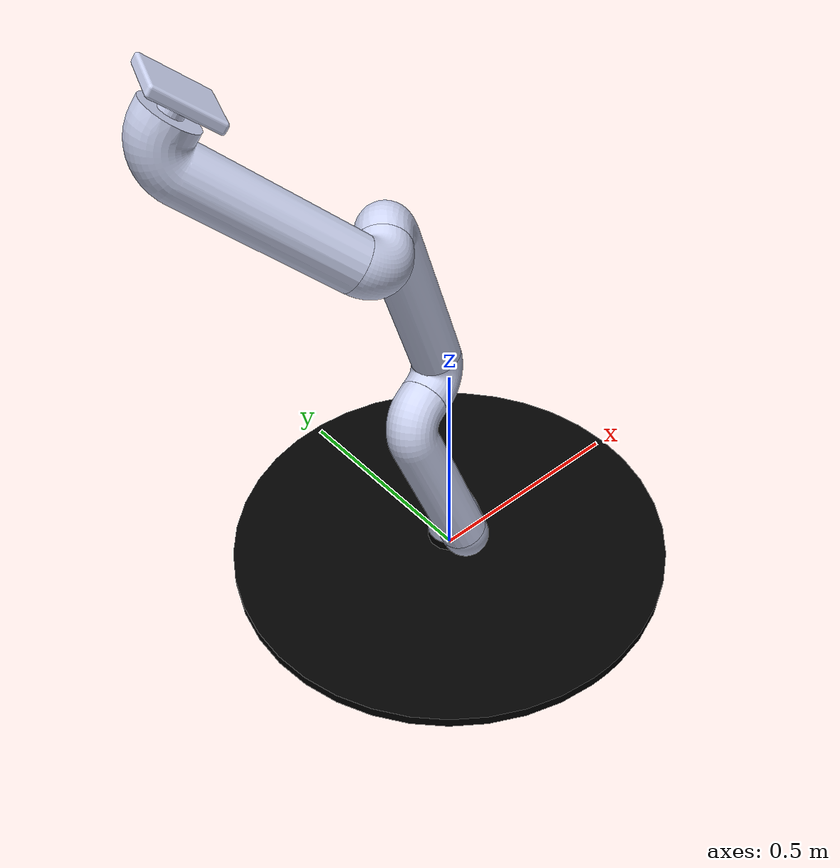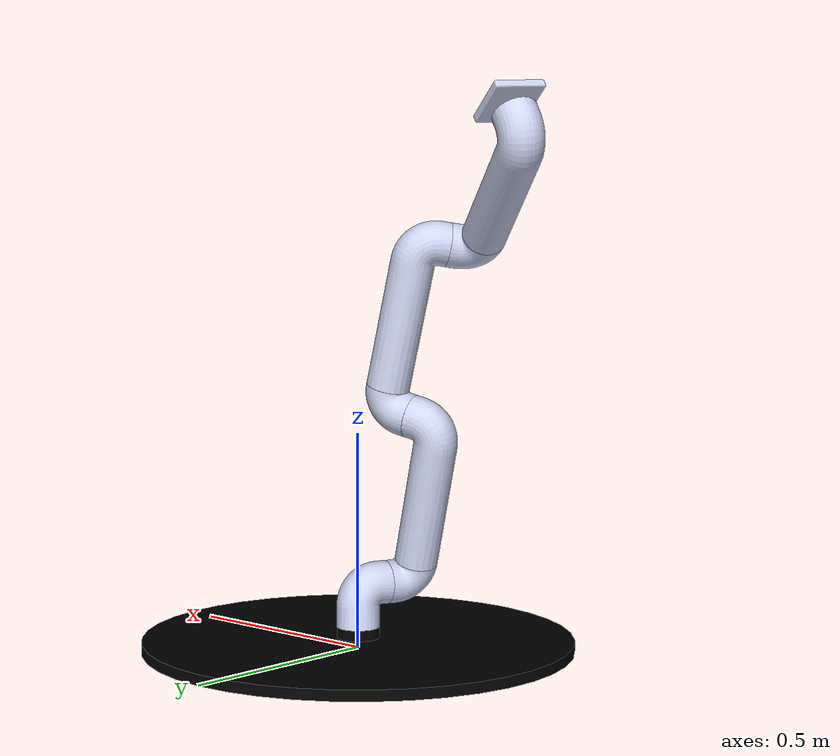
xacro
<?xml version="1.0"?>
<robot xmlns:xacro="http://wiki.ros.org/xacro"  name="sp_1">

<xacro:macro name="link_color">
  <visual>
    <material>
      <ambient>0.501960784313725 1 0.501960784313725 1</ambient>
      <diffuse>0.501960784313725 1 0.501960784313725 1</diffuse>
      <specular>0.1 0.1 0.1 1</specular>
      <emissive>0 0 0 0</emissive>
    </material>
  </visual>
</xacro:macro>

<xacro:macro name="base_color">
  <visual>
    <material>
      <ambient>0 0 0 1</ambient>
      <diffuse>0 0 0 1</diffuse>
      <specular>0.1 0.1 0.1 1</specular>
      <emissive>0 0 0 0</emissive>
    </material>
  </visual>
</xacro:macro>

<xacro:macro name="link2_color">
  <visual>
    <material>
      <ambient>0.250980392156863 0.250980392156863 0.250980392156863 1</ambient>
      <diffuse>0.250980392156863 0.250980392156863 0.250980392156863 1</diffuse>
      <specular>0.1 0.1 0.1 1</specular>
      <emissive>0 0 0 0</emissive>
    </material>
  </visual>
</xacro:macro>

<link
    name="dummy_link">
    <pose>0 0 0 0 0 0</pose>
  </link>
  <joint
    name="dummy_joint" type="fixed">
    <parent
      link="dummy_link" />
    <child
      link="base_link" />
  </joint>

  <link
    name="base_link">
    <inertial>
      <origin
        xyz="-1.19594740478667E-33 -5.22291626813971E-17 0.0127129431358553"
        rpy="0 0 0" />
      <mass
        value="19.8061708845568" />
      <inertia
        ixx="1.22843969185759"
        ixy="4.79932775282417E-33"
        ixz="-1.83805212584181E-34"
        iyy="1.22843969185759"
        iyz="-4.28310618616912E-15"
        izz="2.45460967099484" />
    </inertial>
    <visual>
      <origin
        xyz="0 0 0"
        rpy="0 0 0" />
      <geometry>
        <mesh
          filename="package://sp_1/meshes/base_link.STL" />
      </geometry>
      <material
        name="">
        <color
          rgba="0 0 0 1" />
      </material>
    </visual>
    <collision>
      <origin
        xyz="0 0 0"
        rpy="0 0 0" />
      <geometry>
        <mesh
          filename="package://sp_1/meshes/base_link.STL" />
      </geometry>
    </collision>
  </link>
  <link
    name="link_1">
    <inertial>
      <origin
        xyz="-0.00478693222677542 -0.0112055764876874 0.116985344819798"
        rpy="0 0 0" />
      <mass
        value="1.1666289894463" />
      <inertia
        ixx="0.00280768064603209"
        ixy="-9.46908110664078E-05"
        ixz="0.000205277889218212"
        iyy="0.0026264731096657"
        iyz="0.000480528442830104"
        izz="0.00172039608026598" />
    </inertial>
    <visual>
      <origin
        xyz="0 0 0"
        rpy="0 0 0" />
      <geometry>
        <mesh
          filename="package://sp_1/meshes/link_1.STL" />
      </geometry>
      <material
        name="">
        <color
          rgba="0.792156862745098 0.819607843137255 0.933333333333333 1" />
      </material>
    </visual>
    <collision>
      <origin
        xyz="0 0 0"
        rpy="0 0 0" />
      <geometry>
        <mesh
          filename="package://sp_1/meshes/link_1.STL" />
      </geometry>
    </collision>
  </link>
  <joint
    name="joint_1"
    type="revolute">
    <origin
      xyz="0 0 0"
      rpy="0 0 0" />
    <parent
      link="base_link" />
    <child
      link="link_1" />
    <axis
      xyz="0 0 1" />
    <limit
      lower="0"
      upper="0"
      effort="0"
      velocity="0" />
  </joint>
  <link
    name="link_2">
    <inertial>
      <origin
        xyz="-0.0494647312888248 -0.107710423866363 0.158924315048863"
        rpy="0 0 0" />
      <mass
        value="0.824195390205011" />
      <inertia
        ixx="0.00123919523287019"
        ixy="-0.000157550416234854"
        ixz="0.000101162032909608"
        iyy="0.00114287666730252"
        iyz="0.000183407128180559"
        izz="0.00128664652220969" />
    </inertial>
    <visual>
      <origin
        xyz="0 0 0"
        rpy="0 0 0" />
      <geometry>
        <mesh
          filename="package://sp_1/meshes/link_2.STL" />
      </geometry>
      <material
        name="">
        <color
          rgba="0.792156862745098 0.819607843137255 0.933333333333333 1" />
      </material>
    </visual>
    <collision>
      <origin
        xyz="0 0 0"
        rpy="0 0 0" />
      <geometry>
        <mesh
          filename="package://sp_1/meshes/link_2.STL" />
      </geometry>
    </collision>
  </link>
  <joint
    name="joint_2"
    type="revolute">
    <origin
      xyz="0 0 0"
      rpy="0 0 0" />
    <parent
      link="link_1" />
    <child
      link="link_2" />
    <axis
      xyz="0.39285 0.9196 0" />
    <limit
      lower="0"
      upper="0"
      effort="0"
      velocity="0" />
  </joint>
  <link
    name="link_3">
    <inertial>
      <origin
        xyz="-0.127108689097042 -0.0947199609914197 0.384585401482302"
        rpy="0 0 0" />
      <mass
        value="3.07985891548248" />
      <inertia
        ixx="0.0379565795623957"
        ixy="0.00130551405711101"
        ixz="0.00867728337825567"
        iyy="0.039609635106212"
        iyz="-0.00523085114621079"
        izz="0.00723624283008186" />
    </inertial>
    <visual>
      <origin
        xyz="0 0 0"
        rpy="0 0 0" />
      <geometry>
        <mesh
          filename="package://sp_1/meshes/link_3.STL" />
      </geometry>
      <material
        name="">
        <color
          rgba="0.792156862745098 0.819607843137255 0.933333333333333 1" />
      </material>
    </visual>
    <collision>
      <origin
        xyz="0 0 0"
        rpy="0 0 0" />
      <geometry>
        <mesh
          filename="package://sp_1/meshes/link_3.STL" />
      </geometry>
    </collision>
  </link>
  <joint
    name="joint_3"
    type="revolute">
    <origin
      xyz="0 0 0"
      rpy="0 0 0" />
    <parent
      link="link_2" />
    <child
      link="link_3" />
    <axis
      xyz="-0.30817 0.13165 0.94218" />
    <limit
      lower="0"
      upper="0"
      effort="0"
      velocity="0" />
  </joint>
  <link
    name="link_4">
    <inertial>
      <origin
        xyz="-0.0723211475161396 -0.0394824819825069 0.566413338422513"
        rpy="0 0 0" />
      <mass
        value="0.824195390205011" />
      <inertia
        ixx="0.00120090646206984"
        ixy="-7.24082824664393E-05"
        ixz="-0.00023161607873399"
        iyy="0.00131227360286286"
        iyz="-9.30970887118092E-05"
        izz="0.0011555383574497" />
    </inertial>
    <visual>
      <origin
        xyz="0 0 0"
        rpy="0 0 0" />
      <geometry>
        <mesh
          filename="package://sp_1/meshes/link_4.STL" />
      </geometry>
      <material
        name="">
        <color
          rgba="0.792156862745098 0.819607843137255 0.933333333333333 1" />
      </material>
    </visual>
    <collision>
      <origin
        xyz="0 0 0"
        rpy="0 0 0" />
      <geometry>
        <mesh
          filename="package://sp_1/meshes/link_4.STL" />
      </geometry>
    </collision>
  </link>
  <joint
    name="joint_4"
    type="revolute">
    <origin
      xyz="0 0 0"
      rpy="0 0 0" />
    <parent
      link="link_3" />
    <child
      link="link_4" />
    <axis
      xyz="-0.91668 -0.30596 -0.25708" />
    <limit
      lower="0"
      upper="0"
      effort="0"
      velocity="0" />
  </joint>
  <link
    name="link_5">
    <inertial>
      <origin
        xyz="-0.122523343831695 -0.0275809302506961 0.79968757980154"
        rpy="0 0 0" />
      <mass
        value="3.07985891548248" />
      <inertia
        ixx="0.0366543760680499"
        ixy="-0.000222951799208805"
        ixz="0.0109651737297575"
        iyy="0.0403113090599346"
        iyz="0.000301464339597496"
        izz="0.00783677237070504" />
    </inertial>
    <visual>
      <origin
        xyz="0 0 0"
        rpy="0 0 0" />
      <geometry>
        <mesh
          filename="package://sp_1/meshes/link_5.STL" />
      </geometry>
      <material
        name="">
        <color
          rgba="0.792156862745098 0.819607843137255 0.933333333333333 1" />
      </material>
    </visual>
    <collision>
      <origin
        xyz="0 0 0"
        rpy="0 0 0" />
      <geometry>
        <mesh
          filename="package://sp_1/meshes/link_5.STL" />
      </geometry>
    </collision>
  </link>
  <joint
    name="joint_5"
    type="revolute">
    <origin
      xyz="0 0 0"
      rpy="0 0 0" />
    <parent
      link="link_4" />
    <child
      link="link_5" />
    <axis
      xyz="-0.28129 0.037061 0.95891" />
    <limit
      lower="0"
      upper="0"
      effort="0"
      velocity="0" />
  </joint>
  <link
    name="link_6">
    <inertial>
      <origin
        xyz="-0.243488686921723 -0.10443439720517 0.933653640652936"
        rpy="0 0 0" />
      <mass
        value="0.824195390205011" />
      <inertia
        ixx="0.00100776944123062"
        ixy="-0.000177688839948328"
        ixz="5.70236038081193E-05"
        iyy="0.00130523110477794"
        iyz="6.23331013733708E-05"
        izz="0.00135571787637384" />
    </inertial>
    <visual>
      <origin
        xyz="0 0 0"
        rpy="0 0 0" />
      <geometry>
        <mesh
          filename="package://sp_1/meshes/link_6.STL" />
      </geometry>
      <material
        name="">
        <color
          rgba="0.792156862745098 0.819607843137255 0.933333333333333 1" />
      </material>
    </visual>
    <collision>
      <origin
        xyz="0 0 0"
        rpy="0 0 0" />
      <geometry>
        <mesh
          filename="package://sp_1/meshes/link_6.STL" />
      </geometry>
    </collision>
  </link>
  <joint
    name="joint_6"
    type="revolute">
    <origin
      xyz="0 0 0"
      rpy="0 0 0" />
    <parent
      link="link_5" />
    <child
      link="link_6" />
    <axis
      xyz="-0.63009 -0.76081 -0.15543" />
    <limit
      lower="0"
      upper="0"
      effort="0"
      velocity="0" />
  </joint>
  <link
    name="link_7">
    <inertial>
      <origin
        xyz="-0.414970747836835 -0.0176940960889745 1.07595525798021"
        rpy="0 0 0" />
      <mass
        value="3.07985891548248" />
      <inertia
        ixx="0.0256174259915329"
        ixy="0.00983961543488005"
        ixz="0.01478518037338"
        iyy="0.0339138113725898"
        iyz="-0.00987011413587972"
        izz="0.0252712201345668" />
    </inertial>
    <visual>
      <origin
        xyz="0 0 0"
        rpy="0 0 0" />
      <geometry>
        <mesh
          filename="package://sp_1/meshes/link_7.STL" />
      </geometry>
      <material
        name="">
        <color
          rgba="0.792156862745098 0.819607843137255 0.933333333333333 1" />
      </material>
    </visual>
    <collision>
      <origin
        xyz="0 0 0"
        rpy="0 0 0" />
      <geometry>
        <mesh
          filename="package://sp_1/meshes/link_7.STL" />
      </geometry>
    </collision>
  </link>
  <joint
    name="joint_7"
    type="revolute">
    <origin
      xyz="0 0 0"
      rpy="0 0 0" />
    <parent
      link="link_6" />
    <child
      link="link_7" />
    <axis
      xyz="-0.67404 0.43648 0.59594" />
    <limit
      lower="0"
      upper="0"
      effort="0"
      velocity="0" />
  </joint>
  <link
    name="end_effector">
    <inertial>
      <origin
        xyz="-0.465112699546798 0.0314185982157943 1.23879419097166"
        rpy="0 0 0" />
      <mass
        value="0.332846963370469" />
      <inertia
        ixx="0.000486617887572416"
        ixy="-3.12792237636447E-05"
        ixz="0.000129939709500207"
        iyy="0.000402329007373404"
        iyz="-4.29512326716909E-05"
        izz="0.000570417599071427" />
    </inertial>
    <visual>
      <origin
        xyz="0 0 0"
        rpy="0 0 0" />
      <geometry>
        <mesh
          filename="package://sp_1/meshes/end_effector.STL" />
      </geometry>
      <material
        name="">
        <color
          rgba="0.792156862745098 0.819607843137255 0.933333333333333 1" />
      </material>
    </visual>
    <collision>
      <origin
        xyz="0 0 0"
        rpy="0 0 0" />
      <geometry>
        <mesh
          filename="package://sp_1/meshes/end_effector.STL" />
      </geometry>
    </collision>
  </link>
  <joint
    name="joint_8"
    type="revolute">
    <origin
      xyz="0 0 0"
      rpy="0 0 0" />
    <parent
      link="link_7" />
    <child
      link="end_effector" />
    <axis
      xyz="0.57785 -0.19101 0.79348" />
    <limit
      lower="0"
      upper="0"
      effort="0"
      velocity="0" />
  </joint>

<!-- Transmission -->
  <transmission name="trans_link1">
    <type>transmission_interface/SimpleTransmission</type>
    <joint name="joint_1">
      <hardwareInterface>hardware_interface/EffortJointInterface</hardwareInterface>
    </joint>
    <actuator name="motor_link1">
      <hardwareInterface>hardware_interface/EffortJointInterface</hardwareInterface>
      <mechanicalReduction>1</mechanicalReduction>
    </actuator>
  </transmission>

  <transmission name="trans_link2">
    <type>transmission_interface/SimpleTransmission</type>
    <joint name="joint_2">
      <hardwareInterface>hardware_interface/EffortJointInterface</hardwareInterface>
    </joint>
    <actuator name="motor_link2">
      <hardwareInterface>hardware_interface/EffortJointInterface</hardwareInterface>
      <mechanicalReduction>1</mechanicalReduction>
    </actuator>
  </transmission>

  <transmission name="trans_link3">
    <type>transmission_interface/SimpleTransmission</type>
    <joint name="joint_3">
      <hardwareInterface>hardware_interface/EffortJointInterface</hardwareInterface>
    </joint>
    <actuator name="motor_link3">
      <hardwareInterface>hardware_interface/EffortJointInterface</hardwareInterface>
      <mechanicalReduction>1</mechanicalReduction>
    </actuator>
  </transmission>

  <transmission name="trans_link4">
    <type>transmission_interface/SimpleTransmission</type>
    <joint name="joint_4">
      <hardwareInterface>hardware_interface/EffortJointInterface</hardwareInterface>
    </joint>
    <actuator name="motor_link4">
      <hardwareInterface>hardware_interface/EffortJointInterface</hardwareInterface>
      <mechanicalReduction>1</mechanicalReduction>
    </actuator>
  </transmission>

  <transmission name="trans_link5">
    <type>transmission_interface/SimpleTransmission</type>
    <joint name="joint_5">
      <hardwareInterface>hardware_interface/EffortJointInterface</hardwareInterface>
    </joint>
    <actuator name="motor_link5">
      <hardwareInterface>hardware_interface/EffortJointInterface</hardwareInterface>
      <mechanicalReduction>1</mechanicalReduction>
    </actuator>
  </transmission>

  <transmission name="trans_link6">
    <type>transmission_interface/SimpleTransmission</type>
    <joint name="joint_6">
      <hardwareInterface>hardware_interface/EffortJointInterface</hardwareInterface>
    </joint>
    <actuator name="motor_link6">
      <hardwareInterface>hardware_interface/EffortJointInterface</hardwareInterface>
      <mechanicalReduction>1</mechanicalReduction>
    </actuator>
  </transmission>

  <transmission name="trans_link7">
    <type>transmission_interface/SimpleTransmission</type>
    <joint name="joint_7">
      <hardwareInterface>hardware_interface/EffortJointInterface</hardwareInterface>
    </joint>
    <actuator name="motor_link7">
      <hardwareInterface>hardware_interface/EffortJointInterface</hardwareInterface>
      <mechanicalReduction>1</mechanicalReduction>
    </actuator>
  </transmission>

  <transmission name="trans_link8">
    <type>transmission_interface/SimpleTransmission</type>
    <joint name="joint_8">
      <hardwareInterface>hardware_interface/EffortJointInterface</hardwareInterface>
    </joint>
    <actuator name="motor_link8">
      <hardwareInterface>hardware_interface/EffortJointInterface</hardwareInterface>
      <mechanicalReduction>1</mechanicalReduction>
    </actuator>
  </transmission>

  <gazebo>
    <plugin filename="libgazebo_ros_control.so" name="gazebo_ros_control">
      <robotNamespace>/sp_1</robotNamespace>
      <robotSimType>gazebo_ros_control/DefaultRobotHWSim</robotSimType>
      <legacyModeNS>true</legacyModeNS>
    </plugin>
  </gazebo>

  <gazebo reference="link_3">
    <xacro:link_color />
  </gazebo>
  <gazebo reference="link_5">
    <xacro:link_color />
  </gazebo>
  <gazebo reference="link_7">
    <xacro:link_color />
  </gazebo>
  <gazebo reference="base_link">
    <xacro:base_color />
  </gazebo>
  <gazebo reference="link_1">
    <xacro:link2_color />
  </gazebo>
  <gazebo reference="link_2">
    <xacro:link2_color />
  </gazebo>
  <gazebo reference="link_4">
    <xacro:link2_color />
  </gazebo>
  <gazebo reference="link_6">
    <xacro:link2_color />
  </gazebo>
  <gazebo reference="end_effector">
    <xacro:link2_color />
  </gazebo>

</robot>
